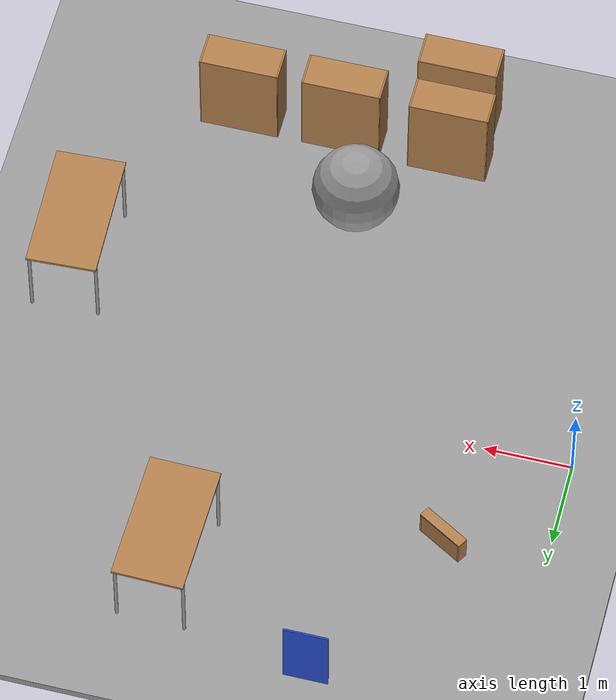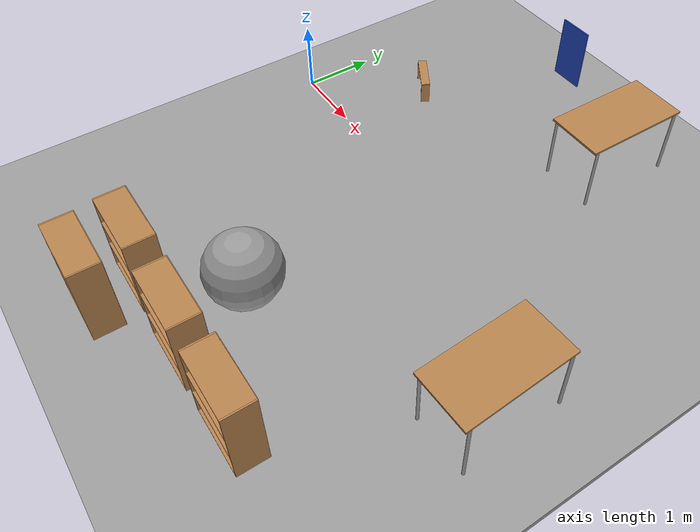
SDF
<sdf version="1.6">
 <world name="default">
  <model name="ground_plane">
   <static>1</static>
   <link name="link">
    <collision name="collision">
     <geometry><plane><normal>0 0 1</normal><size>100 100</size></plane></geometry>
     <surface><friction><ode><mu>100</mu><mu2>50</mu2></ode></friction></surface>
    </collision>
    <visual name="visual">
     <cast_shadows>0</cast_shadows>
     <geometry><plane><normal>0 0 1</normal><size>100 100</size></plane></geometry>
     <material>
      <script><uri>file://media/materials/scripts/gazebo.material</uri><name>Gazebo/Grey</name></script>
     </material>
    </visual>
   </link>
  </model>
  <model name="table">
   <static>1</static>
   <link name="link">
    <collision name="surface">
     <pose>0 0 1 0 -0 0</pose>
     <geometry><box><size>1.5 0.8 0.03</size></box></geometry>
     <surface><friction><ode><mu>0.6</mu><mu2>0.6</mu2></ode></friction></surface>
    </collision>
    <visual name="visual1">
     <pose>0 0 1 0 -0 0</pose>
     <geometry><box><size>1.5 0.8 0.03</size></box></geometry>
     <material>
      <script><uri>file://media/materials/scripts/gazebo.material</uri><name>Gazebo/Wood</name></script>
     </material>
    </visual>
    <collision name="front_left_leg">
     <pose>0.68 0.38 0.5 0 -0 0</pose>
     <geometry><cylinder><radius>0.02</radius><length>1</length></cylinder></geometry>
    </collision>
    <visual name="front_left_leg">
     <pose>0.68 0.38 0.5 0 -0 0</pose>
     <geometry><cylinder><radius>0.02</radius><length>1</length></cylinder></geometry>
     <material>
      <script><uri>file://media/materials/scripts/gazebo.material</uri><name>Gazebo/Grey</name></script>
     </material>
    </visual>
    <collision name="front_right_leg">
     <pose>0.68 -0.38 0.5 0 -0 0</pose>
     <geometry><cylinder><radius>0.02</radius><length>1</length></cylinder></geometry>
    </collision>
    <visual name="front_right_leg">
     <pose>0.68 -0.38 0.5 0 -0 0</pose>
     <geometry><cylinder><radius>0.02</radius><length>1</length></cylinder></geometry>
     <material>
      <script><uri>file://media/materials/scripts/gazebo.material</uri><name>Gazebo/Grey</name></script>
     </material>
    </visual>
    <collision name="back_right_leg">
     <pose>-0.68 -0.38 0.5 0 -0 0</pose>
     <geometry><cylinder><radius>0.02</radius><length>1</length></cylinder></geometry>
    </collision>
    <visual name="back_right_leg">
     <pose>-0.68 -0.38 0.5 0 -0 0</pose>
     <geometry><cylinder><radius>0.02</radius><length>1</length></cylinder></geometry>
     <material>
      <script><uri>file://media/materials/scripts/gazebo.material</uri><name>Gazebo/Grey</name></script>
     </material>
    </visual>
    <collision name="back_left_leg">
     <pose>-0.68 0.38 0.5 0 -0 0</pose>
     <geometry><cylinder><radius>0.02</radius><length>1</length></cylinder></geometry>
    </collision>
    <visual name="back_left_leg">
     <pose>-0.68 0.38 0.5 0 -0 0</pose>
     <geometry><cylinder><radius>0.02</radius><length>1</length></cylinder></geometry>
     <material>
      <script><uri>file://media/materials/scripts/gazebo.material</uri><name>Gazebo/Grey</name></script>
     </material>
    </visual>
   </link>
   <pose>3.97398 2.37676 0 0 -0 1.55172</pose>
  </model>
  <model name="ground_plane_0">
   <static>1</static>
   <link name="link">
    <collision name="collision">
     <geometry><plane><normal>0 0 1</normal><size>100 100</size></plane></geometry>
     <surface><friction><ode><mu>100</mu><mu2>50</mu2></ode></friction></surface>
    </collision>
    <visual name="visual">
     <cast_shadows>0</cast_shadows>
     <geometry><plane><normal>0 0 1</normal><size>100 100</size></plane></geometry>
     <material>
      <script><uri>file://media/materials/scripts/gazebo.material</uri><name>Gazebo/Grey</name></script>
     </material>
    </visual>
   </link>
   <pose>2.55488 -2.2574 0 0 -0 0</pose>
  </model>
  <model name="table_1">
   <static>1</static>
   <link name="link">
    <collision name="surface">
     <pose>0 0 1 0 -0 0</pose>
     <geometry><box><size>1.5 0.8 0.03</size></box></geometry>
     <surface><friction><ode><mu>0.6</mu><mu2>0.6</mu2></ode></friction></surface>
    </collision>
    <visual name="visual1">
     <pose>0 0 1 0 -0 0</pose>
     <geometry><box><size>1.5 0.8 0.03</size></box></geometry>
     <material>
      <script><uri>file://media/materials/scripts/gazebo.material</uri><name>Gazebo/Wood</name></script>
     </material>
    </visual>
    <collision name="front_left_leg">
     <pose>0.68 0.38 0.5 0 -0 0</pose>
     <geometry><cylinder><radius>0.02</radius><length>1</length></cylinder></geometry>
    </collision>
    <visual name="front_left_leg">
     <pose>0.68 0.38 0.5 0 -0 0</pose>
     <geometry><cylinder><radius>0.02</radius><length>1</length></cylinder></geometry>
     <material>
      <script><uri>file://media/materials/scripts/gazebo.material</uri><name>Gazebo/Grey</name></script>
     </material>
    </visual>
    <collision name="front_right_leg">
     <pose>0.68 -0.38 0.5 0 -0 0</pose>
     <geometry><cylinder><radius>0.02</radius><length>1</length></cylinder></geometry>
    </collision>
    <visual name="front_right_leg">
     <pose>0.68 -0.38 0.5 0 -0 0</pose>
     <geometry><cylinder><radius>0.02</radius><length>1</length></cylinder></geometry>
     <material>
      <script><uri>file://media/materials/scripts/gazebo.material</uri><name>Gazebo/Grey</name></script>
     </material>
    </visual>
    <collision name="back_right_leg">
     <pose>-0.68 -0.38 0.5 0 -0 0</pose>
     <geometry><cylinder><radius>0.02</radius><length>1</length></cylinder></geometry>
    </collision>
    <visual name="back_right_leg">
     <pose>-0.68 -0.38 0.5 0 -0 0</pose>
     <geometry><cylinder><radius>0.02</radius><length>1</length></cylinder></geometry>
     <material>
      <script><uri>file://media/materials/scripts/gazebo.material</uri><name>Gazebo/Grey</name></script>
     </material>
    </visual>
    <collision name="back_left_leg">
     <pose>-0.68 0.38 0.5 0 -0 0</pose>
     <geometry><cylinder><radius>0.02</radius><length>1</length></cylinder></geometry>
    </collision>
    <visual name="back_left_leg">
     <pose>-0.68 0.38 0.5 0 -0 0</pose>
     <geometry><cylinder><radius>0.02</radius><length>1</length></cylinder></geometry>
     <material>
      <script><uri>file://media/materials/scripts/gazebo.material</uri><name>Gazebo/Grey</name></script>
     </material>
    </visual>
   </link>
   <pose>6.01108 -1.30901 0 0 0 -1.52855</pose>
  </model>
  <model name="bookshelf_1">
   <static>1</static>
   <link name="link">
    <inertial><mass>1</mass></inertial>
    <collision name="back">
     <pose>0 0.005 0.6 0 -0 0</pose>
     <geometry><box><size>0.9 0.01 1.2</size></box></geometry>
    </collision>
    <visual name="visual1">
     <pose>0 0.005 0.6 0 -0 0</pose>
     <geometry><box><size>0.9 0.01 1.2</size></box></geometry>
     <material>
      <script><uri>file://media/materials/scripts/gazebo.material</uri><name>Gazebo/Wood</name></script>
     </material>
    </visual>
    <collision name="left_side">
     <pose>0.45 -0.195 0.6 0 -0 0</pose>
     <geometry><box><size>0.02 0.4 1.2</size></box></geometry>
    </collision>
    <visual name="visual2">
     <pose>0.45 -0.195 0.6 0 -0 0</pose>
     <geometry><box><size>0.02 0.4 1.2</size></box></geometry>
     <material>
      <script><uri>file://media/materials/scripts/gazebo.material</uri><name>Gazebo/Wood</name></script>
     </material>
    </visual>
    <collision name="right_side">
     <pose>-0.45 -0.195 0.6 0 -0 0</pose>
     <geometry><box><size>0.02 0.4 1.2</size></box></geometry>
    </collision>
    <visual name="visual3">
     <pose>-0.45 -0.195 0.6 0 -0 0</pose>
     <geometry><box><size>0.02 0.4 1.2</size></box></geometry>
     <material>
      <script><uri>file://media/materials/scripts/gazebo.material</uri><name>Gazebo/Wood</name></script>
     </material>
    </visual>
    <collision name="bottom">
     <pose>0 -0.195 0.03 0 -0 0</pose>
     <geometry><box><size>0.88 0.4 0.06</size></box></geometry>
    </collision>
    <visual name="visual4">
     <pose>0 -0.195 0.03 0 -0 0</pose>
     <geometry><box><size>0.88 0.4 0.06</size></box></geometry>
     <material>
      <script><uri>file://media/materials/scripts/gazebo.material</uri><name>Gazebo/Wood</name></script>
     </material>
    </visual>
    <collision name="top">
     <pose>0 -0.195 1.19 0 -0 0</pose>
     <geometry><box><size>0.88 0.4 0.02</size></box></geometry>
    </collision>
    <visual name="visual5">
     <pose>0 -0.195 1.19 0 -0 0</pose>
     <geometry><box><size>0.88 0.4 0.02</size></box></geometry>
     <material>
      <script><uri>file://media/materials/scripts/gazebo.material</uri><name>Gazebo/Wood</name></script>
     </material>
    </visual>
    <collision name="low_shelf">
     <pose>0 -0.195 0.43 0 -0 0</pose>
     <geometry><box><size>0.88 0.4 0.02</size></box></geometry>
    </collision>
    <visual name="visual6">
     <pose>0 -0.195 0.43 0 -0 0</pose>
     <geometry><box><size>0.88 0.4 0.02</size></box></geometry>
     <material>
      <script><uri>file://media/materials/scripts/gazebo.material</uri><name>Gazebo/Wood</name></script>
     </material>
    </visual>
    <collision name="high_shelf">
     <pose>0 -0.195 0.8 0 -0 0</pose>
     <geometry><box><size>0.88 0.4 0.02</size></box></geometry>
    </collision>
    <visual name="visual7">
     <pose>0 -0.195 0.8 0 -0 0</pose>
     <geometry><box><size>0.88 0.4 0.02</size></box></geometry>
     <material>
      <script><uri>file://media/materials/scripts/gazebo.material</uri><name>Gazebo/Wood</name></script>
     </material>
    </visual>
   </link>
   <pose>2.2636 -3.49117 0 0 -0 0</pose>
  </model>
  <model name="bookshelf_2">
   <static>1</static>
   <link name="link">
    <inertial><mass>1</mass></inertial>
    <collision name="back">
     <pose>0 0.005 0.6 0 -0 0</pose>
     <geometry><box><size>0.9 0.01 1.2</size></box></geometry>
    </collision>
    <visual name="visual1">
     <pose>0 0.005 0.6 0 -0 0</pose>
     <geometry><box><size>0.9 0.01 1.2</size></box></geometry>
     <material>
      <script><uri>file://media/materials/scripts/gazebo.material</uri><name>Gazebo/Wood</name></script>
     </material>
    </visual>
    <collision name="left_side">
     <pose>0.45 -0.195 0.6 0 -0 0</pose>
     <geometry><box><size>0.02 0.4 1.2</size></box></geometry>
    </collision>
    <visual name="visual2">
     <pose>0.45 -0.195 0.6 0 -0 0</pose>
     <geometry><box><size>0.02 0.4 1.2</size></box></geometry>
     <material>
      <script><uri>file://media/materials/scripts/gazebo.material</uri><name>Gazebo/Wood</name></script>
     </material>
    </visual>
    <collision name="right_side">
     <pose>-0.45 -0.195 0.6 0 -0 0</pose>
     <geometry><box><size>0.02 0.4 1.2</size></box></geometry>
    </collision>
    <visual name="visual3">
     <pose>-0.45 -0.195 0.6 0 -0 0</pose>
     <geometry><box><size>0.02 0.4 1.2</size></box></geometry>
     <material>
      <script><uri>file://media/materials/scripts/gazebo.material</uri><name>Gazebo/Wood</name></script>
     </material>
    </visual>
    <collision name="bottom">
     <pose>0 -0.195 0.03 0 -0 0</pose>
     <geometry><box><size>0.88 0.4 0.06</size></box></geometry>
    </collision>
    <visual name="visual4">
     <pose>0 -0.195 0.03 0 -0 0</pose>
     <geometry><box><size>0.88 0.4 0.06</size></box></geometry>
     <material>
      <script><uri>file://media/materials/scripts/gazebo.material</uri><name>Gazebo/Wood</name></script>
     </material>
    </visual>
    <collision name="top">
     <pose>0 -0.195 1.19 0 -0 0</pose>
     <geometry><box><size>0.88 0.4 0.02</size></box></geometry>
    </collision>
    <visual name="visual5">
     <pose>0 -0.195 1.19 0 -0 0</pose>
     <geometry><box><size>0.88 0.4 0.02</size></box></geometry>
     <material>
      <script><uri>file://media/materials/scripts/gazebo.material</uri><name>Gazebo/Wood</name></script>
     </material>
    </visual>
    <collision name="low_shelf">
     <pose>0 -0.195 0.43 0 -0 0</pose>
     <geometry><box><size>0.88 0.4 0.02</size></box></geometry>
    </collision>
    <visual name="visual6">
     <pose>0 -0.195 0.43 0 -0 0</pose>
     <geometry><box><size>0.88 0.4 0.02</size></box></geometry>
     <material>
      <script><uri>file://media/materials/scripts/gazebo.material</uri><name>Gazebo/Wood</name></script>
     </material>
    </visual>
    <collision name="high_shelf">
     <pose>0 -0.195 0.8 0 -0 0</pose>
     <geometry><box><size>0.88 0.4 0.02</size></box></geometry>
    </collision>
    <visual name="visual7">
     <pose>0 -0.195 0.8 0 -0 0</pose>
     <geometry><box><size>0.88 0.4 0.02</size></box></geometry>
     <material>
      <script><uri>file://media/materials/scripts/gazebo.material</uri><name>Gazebo/Wood</name></script>
     </material>
    </visual>
   </link>
   <pose>3.51852 -3.51648 0 0 -0 0</pose>
  </model>
  <model name="bookshelf_3">
   <static>1</static>
   <link name="link">
    <inertial><mass>1</mass></inertial>
    <collision name="back">
     <pose>0 0.005 0.6 0 -0 0</pose>
     <geometry><box><size>0.9 0.01 1.2</size></box></geometry>
    </collision>
    <visual name="visual1">
     <pose>0 0.005 0.6 0 -0 0</pose>
     <geometry><box><size>0.9 0.01 1.2</size></box></geometry>
     <material>
      <script><uri>file://media/materials/scripts/gazebo.material</uri><name>Gazebo/Wood</name></script>
     </material>
    </visual>
    <collision name="left_side">
     <pose>0.45 -0.195 0.6 0 -0 0</pose>
     <geometry><box><size>0.02 0.4 1.2</size></box></geometry>
    </collision>
    <visual name="visual2">
     <pose>0.45 -0.195 0.6 0 -0 0</pose>
     <geometry><box><size>0.02 0.4 1.2</size></box></geometry>
     <material>
      <script><uri>file://media/materials/scripts/gazebo.material</uri><name>Gazebo/Wood</name></script>
     </material>
    </visual>
    <collision name="right_side">
     <pose>-0.45 -0.195 0.6 0 -0 0</pose>
     <geometry><box><size>0.02 0.4 1.2</size></box></geometry>
    </collision>
    <visual name="visual3">
     <pose>-0.45 -0.195 0.6 0 -0 0</pose>
     <geometry><box><size>0.02 0.4 1.2</size></box></geometry>
     <material>
      <script><uri>file://media/materials/scripts/gazebo.material</uri><name>Gazebo/Wood</name></script>
     </material>
    </visual>
    <collision name="bottom">
     <pose>0 -0.195 0.03 0 -0 0</pose>
     <geometry><box><size>0.88 0.4 0.06</size></box></geometry>
    </collision>
    <visual name="visual4">
     <pose>0 -0.195 0.03 0 -0 0</pose>
     <geometry><box><size>0.88 0.4 0.06</size></box></geometry>
     <material>
      <script><uri>file://media/materials/scripts/gazebo.material</uri><name>Gazebo/Wood</name></script>
     </material>
    </visual>
    <collision name="top">
     <pose>0 -0.195 1.19 0 -0 0</pose>
     <geometry><box><size>0.88 0.4 0.02</size></box></geometry>
    </collision>
    <visual name="visual5">
     <pose>0 -0.195 1.19 0 -0 0</pose>
     <geometry><box><size>0.88 0.4 0.02</size></box></geometry>
     <material>
      <script><uri>file://media/materials/scripts/gazebo.material</uri><name>Gazebo/Wood</name></script>
     </material>
    </visual>
    <collision name="low_shelf">
     <pose>0 -0.195 0.43 0 -0 0</pose>
     <geometry><box><size>0.88 0.4 0.02</size></box></geometry>
    </collision>
    <visual name="visual6">
     <pose>0 -0.195 0.43 0 -0 0</pose>
     <geometry><box><size>0.88 0.4 0.02</size></box></geometry>
     <material>
      <script><uri>file://media/materials/scripts/gazebo.material</uri><name>Gazebo/Wood</name></script>
     </material>
    </visual>
    <collision name="high_shelf">
     <pose>0 -0.195 0.8 0 -0 0</pose>
     <geometry><box><size>0.88 0.4 0.02</size></box></geometry>
    </collision>
    <visual name="visual7">
     <pose>0 -0.195 0.8 0 -0 0</pose>
     <geometry><box><size>0.88 0.4 0.02</size></box></geometry>
     <material>
      <script><uri>file://media/materials/scripts/gazebo.material</uri><name>Gazebo/Wood</name></script>
     </material>
    </visual>
   </link>
   <pose>4.71138 -3.50936 0 0 -0 0</pose>
  </model>
  <model name="bookshelf_4">
   <static>1</static>
   <link name="link">
    <inertial><mass>1</mass></inertial>
    <collision name="back">
     <pose>0 0.005 0.6 0 -0 0</pose>
     <geometry><box><size>0.9 0.01 1.2</size></box></geometry>
    </collision>
    <visual name="visual1">
     <pose>0 0.005 0.6 0 -0 0</pose>
     <geometry><box><size>0.9 0.01 1.2</size></box></geometry>
     <material>
      <script><uri>file://media/materials/scripts/gazebo.material</uri><name>Gazebo/Wood</name></script>
     </material>
    </visual>
    <collision name="left_side">
     <pose>0.45 -0.195 0.6 0 -0 0</pose>
     <geometry><box><size>0.02 0.4 1.2</size></box></geometry>
    </collision>
    <visual name="visual2">
     <pose>0.45 -0.195 0.6 0 -0 0</pose>
     <geometry><box><size>0.02 0.4 1.2</size></box></geometry>
     <material>
      <script><uri>file://media/materials/scripts/gazebo.material</uri><name>Gazebo/Wood</name></script>
     </material>
    </visual>
    <collision name="right_side">
     <pose>-0.45 -0.195 0.6 0 -0 0</pose>
     <geometry><box><size>0.02 0.4 1.2</size></box></geometry>
    </collision>
    <visual name="visual3">
     <pose>-0.45 -0.195 0.6 0 -0 0</pose>
     <geometry><box><size>0.02 0.4 1.2</size></box></geometry>
     <material>
      <script><uri>file://media/materials/scripts/gazebo.material</uri><name>Gazebo/Wood</name></script>
     </material>
    </visual>
    <collision name="bottom">
     <pose>0 -0.195 0.03 0 -0 0</pose>
     <geometry><box><size>0.88 0.4 0.06</size></box></geometry>
    </collision>
    <visual name="visual4">
     <pose>0 -0.195 0.03 0 -0 0</pose>
     <geometry><box><size>0.88 0.4 0.06</size></box></geometry>
     <material>
      <script><uri>file://media/materials/scripts/gazebo.material</uri><name>Gazebo/Wood</name></script>
     </material>
    </visual>
    <collision name="top">
     <pose>0 -0.195 1.19 0 -0 0</pose>
     <geometry><box><size>0.88 0.4 0.02</size></box></geometry>
    </collision>
    <visual name="visual5">
     <pose>0 -0.195 1.19 0 -0 0</pose>
     <geometry><box><size>0.88 0.4 0.02</size></box></geometry>
     <material>
      <script><uri>file://media/materials/scripts/gazebo.material</uri><name>Gazebo/Wood</name></script>
     </material>
    </visual>
    <collision name="low_shelf">
     <pose>0 -0.195 0.43 0 -0 0</pose>
     <geometry><box><size>0.88 0.4 0.02</size></box></geometry>
    </collision>
    <visual name="visual6">
     <pose>0 -0.195 0.43 0 -0 0</pose>
     <geometry><box><size>0.88 0.4 0.02</size></box></geometry>
     <material>
      <script><uri>file://media/materials/scripts/gazebo.material</uri><name>Gazebo/Wood</name></script>
     </material>
    </visual>
    <collision name="high_shelf">
     <pose>0 -0.195 0.8 0 -0 0</pose>
     <geometry><box><size>0.88 0.4 0.02</size></box></geometry>
    </collision>
    <visual name="visual7">
     <pose>0 -0.195 0.8 0 -0 0</pose>
     <geometry><box><size>0.88 0.4 0.02</size></box></geometry>
     <material>
      <script><uri>file://media/materials/scripts/gazebo.material</uri><name>Gazebo/Wood</name></script>
     </material>
    </visual>
   </link>
   <pose>2.31258 -4.12819 0 0 -0 0</pose>
  </model>
  <model name="wooden_case">
   <link name="base">
    <pose>0 0 0.024 0 -0 0</pose>
    <inertial>
     <pose>-0.022184 0 0.171592 0 -0 0</pose>
     <mass>3.96264</mass>
     <inertia>
      <ixx>0.213536</ixx>
      <ixy>0</ixy>
      <ixz>0.000779377</ixz>
      <iyy>0.0708943</iyy>
      <iyz>0</iyz>
      <izz>0.154604</izz>
     </inertia>
    </inertial>
    <collision name="collision_back">
     <pose>-0.053975 0 0.1778 0 -0 0</pose>
     <geometry><box><size>0.01905 0.5461 0.3175</size></box></geometry>
     <surface>
      <contact>
       <poissons_ratio>0.347</poissons_ratio>
       <elastic_modulus>8.8e+09</elastic_modulus>
       <ode><kp>100000</kp><kd>100</kd><max_vel>100</max_vel><min_depth>0.001</min_depth></ode>
      </contact>
      <friction>
       <torsional>
        <coefficient>1</coefficient>
        <use_patch_radius>0</use_patch_radius>
        <surface_radius>0.01</surface_radius>
       </torsional>
      </friction>
     </surface>
    </collision>
    <visual name="visual_back">
     <pose>-0.053975 0 0.1778 0 -0 0</pose>
     <geometry><box><size>0.01905 0.5461 0.3175</size></box></geometry>
     <material>
      <script><uri>file://media/materials/scripts/gazebo.material</uri><name>Gazebo/Wood</name></script>
     </material>
    </visual>
    <collision name="collision_bottom">
     <pose>0 0 0.009525 0 -0 0</pose>
     <geometry><box><size>0.127 0.5842 0.01905</size></box></geometry>
     <surface>
      <contact>
       <poissons_ratio>0.347</poissons_ratio>
       <elastic_modulus>8.8e+09</elastic_modulus>
       <ode><kp>100000</kp><kd>100</kd><max_vel>100</max_vel><min_depth>0.001</min_depth></ode>
      </contact>
      <friction>
       <torsional>
        <coefficient>1</coefficient>
        <use_patch_radius>0</use_patch_radius>
        <surface_radius>0.01</surface_radius>
       </torsional>
      </friction>
     </surface>
    </collision>
    <visual name="visual_bottom">
     <pose>0 0 0.009525 0 -0 0</pose>
     <geometry><box><size>0.127 0.5842 0.01905</size></box></geometry>
     <material>
      <script><uri>file://media/materials/scripts/gazebo.material</uri><name>Gazebo/Wood</name></script>
     </material>
    </visual>
    <collision name="collision_top">
     <pose>0 0 0.346075 0 -0 0</pose>
     <geometry><box><size>0.127 0.5842 0.01905</size></box></geometry>
     <surface>
      <contact>
       <poissons_ratio>0.347</poissons_ratio>
       <elastic_modulus>8.8e+09</elastic_modulus>
       <ode><kp>100000</kp><kd>100</kd><max_vel>100</max_vel><min_depth>0.001</min_depth></ode>
      </contact>
      <friction>
       <torsional>
        <coefficient>1</coefficient>
        <use_patch_radius>0</use_patch_radius>
        <surface_radius>0.01</surface_radius>
       </torsional>
      </friction>
     </surface>
    </collision>
    <visual name="visual_top">
     <pose>0 0 0.346075 0 -0 0</pose>
     <geometry><box><size>0.127 0.5842 0.01905</size></box></geometry>
     <material>
      <script><uri>file://media/materials/scripts/gazebo.material</uri><name>Gazebo/Wood</name></script>
     </material>
    </visual>
    <collision name="collision_left">
     <pose>0 -0.282575 0.1778 0 -0 0</pose>
     <geometry><box><size>0.127 0.01905 0.3175</size></box></geometry>
     <surface>
      <contact>
       <poissons_ratio>0.347</poissons_ratio>
       <elastic_modulus>8.8e+09</elastic_modulus>
       <ode><kp>100000</kp><kd>100</kd><max_vel>100</max_vel><min_depth>0.001</min_depth></ode>
      </contact>
      <friction>
       <torsional>
        <coefficient>1</coefficient>
        <use_patch_radius>0</use_patch_radius>
        <surface_radius>0.01</surface_radius>
       </torsional>
      </friction>
     </surface>
    </collision>
    <visual name="visual_left">
     <pose>0 -0.282575 0.1778 0 -0 0</pose>
     <geometry><box><size>0.127 0.01905 0.3175</size></box></geometry>
     <material>
      <script><uri>file://media/materials/scripts/gazebo.material</uri><name>Gazebo/Wood</name></script>
     </material>
    </visual>
    <collision name="collision_right">
     <pose>0 0.282575 0.1778 0 -0 0</pose>
     <geometry><box><size>0.127 0.01905 0.3175</size></box></geometry>
     <surface>
      <contact>
       <poissons_ratio>0.347</poissons_ratio>
       <elastic_modulus>8.8e+09</elastic_modulus>
       <ode><kp>100000</kp><kd>100</kd><max_vel>100</max_vel><min_depth>0.001</min_depth></ode>
      </contact>
      <friction>
       <torsional>
        <coefficient>1</coefficient>
        <use_patch_radius>0</use_patch_radius>
        <surface_radius>0.01</surface_radius>
       </torsional>
      </friction>
     </surface>
    </collision>
    <visual name="visual_right">
     <pose>0 0.282575 0.1778 0 -0 0</pose>
     <geometry><box><size>0.127 0.01905 0.3175</size></box></geometry>
     <material>
      <script><uri>file://media/materials/scripts/gazebo.material</uri><name>Gazebo/Wood</name></script>
     </material>
    </visual>
    <collision name="collision_block_left">
     <pose>0.0095 -0.2151 -0.012 0 -0 0</pose>
     <geometry><box><size>0.108 0.05 0.024</size></box></geometry>
     <surface>
      <contact>
       <poissons_ratio>0.347</poissons_ratio>
       <elastic_modulus>8.8e+09</elastic_modulus>
       <ode><kp>100000</kp><kd>100</kd><max_vel>100</max_vel><min_depth>0.001</min_depth></ode>
      </contact>
      <friction>
       <torsional>
        <coefficient>1</coefficient>
        <use_patch_radius>0</use_patch_radius>
        <surface_radius>0.01</surface_radius>
       </torsional>
      </friction>
     </surface>
    </collision>
    <visual name="visual_block_left">
     <pose>0.0095 -0.2151 -0.012 0 -0 0</pose>
     <geometry><box><size>0.108 0.05 0.024</size></box></geometry>
     <material>
      <script><uri>file://media/materials/scripts/gazebo.material</uri><name>Gazebo/Wood</name></script>
     </material>
    </visual>
    <collision name="collision_block_right">
     <pose>0.0095 0.2151 -0.012 0 -0 0</pose>
     <geometry><box><size>0.108 0.05 0.024</size></box></geometry>
     <surface>
      <contact>
       <poissons_ratio>0.347</poissons_ratio>
       <elastic_modulus>8.8e+09</elastic_modulus>
       <ode><kp>100000</kp><kd>100</kd><max_vel>100</max_vel><min_depth>0.001</min_depth></ode>
      </contact>
      <friction>
       <torsional>
        <coefficient>1</coefficient>
        <use_patch_radius>0</use_patch_radius>
        <surface_radius>0.01</surface_radius>
       </torsional>
      </friction>
     </surface>
    </collision>
    <visual name="visual_block_right">
     <pose>0.0095 0.2151 -0.012 0 -0 0</pose>
     <geometry><box><size>0.108 0.05 0.024</size></box></geometry>
     <material>
      <script><uri>file://media/materials/scripts/gazebo.material</uri><name>Gazebo/Wood</name></script>
     </material>
    </visual>
   </link>
   <link name="lid">
    <pose>0.243775 0 0.009525 0 -0 0</pose>
    <inertial>
     <mass>1.97874</mass>
     <inertia>
      <ixx>0.0563367</ixx>
      <ixy>0</ixy>
      <ixz>0</ixz>
      <iyy>0.020911</iyy>
      <iyz>0</iyz>
      <izz>0.0771281</izz>
     </inertia>
    </inertial>
    <collision name="collision">
     <geometry><box><size>0.3556 0.5842 0.01905</size></box></geometry>
     <surface>
      <contact>
       <poissons_ratio>0.347</poissons_ratio>
       <elastic_modulus>8.8e+09</elastic_modulus>
       <ode><kp>100000</kp><kd>100</kd><max_vel>100</max_vel><min_depth>0.001</min_depth></ode>
      </contact>
      <friction>
       <torsional>
        <coefficient>1</coefficient>
        <use_patch_radius>0</use_patch_radius>
        <surface_radius>0.01</surface_radius>
       </torsional>
      </friction>
     </surface>
    </collision>
    <visual name="visual">
     <geometry><box><size>0.3556 0.5842 0.01905</size></box></geometry>
     <material>
      <script><uri>file://media/materials/scripts/gazebo.material</uri><name>Gazebo/Wood</name></script>
     </material>
    </visual>
    <visual name="tee_nut_1">
     <pose>0.122 -0.216 0 0 -0 0</pose>
     <geometry><cylinder><radius>0.00635</radius><length>0.0192405</length></cylinder></geometry>
     <material>
      <script><uri>file://media/materials/scripts/gazebo.material</uri><name>Gazebo/Grey</name></script>
     </material>
    </visual>
    <visual name="tee_nut_2">
     <pose>0.122 -0.088 0 0 -0 0</pose>
     <geometry><cylinder><radius>0.00635</radius><length>0.0192405</length></cylinder></geometry>
     <material>
      <script><uri>file://media/materials/scripts/gazebo.material</uri><name>Gazebo/Grey</name></script>
     </material>
    </visual>
    <visual name="tee_nut_3">
     <pose>0.122 0.088 0 0 -0 0</pose>
     <geometry><cylinder><radius>0.00635</radius><length>0.0192405</length></cylinder></geometry>
     <material>
      <script><uri>file://media/materials/scripts/gazebo.material</uri><name>Gazebo/Grey</name></script>
     </material>
    </visual>
    <visual name="tee_nut_4">
     <pose>0.122 0.216 0 0 -0 0</pose>
     <geometry><cylinder><radius>0.00635</radius><length>0.0192405</length></cylinder></geometry>
     <material>
      <script><uri>file://media/materials/scripts/gazebo.material</uri><name>Gazebo/Grey</name></script>
     </material>
    </visual>
   </link>
   <joint name="lid_hinge" type="revolute">
    <pose>-0.1778 0 0.01905 0 -0 0</pose>
    <parent>base</parent>
    <child>lid</child>
    <axis>
     <xyz>0 1 0</xyz>
     <limit><upper>0.523599</upper><lower>-1.5708</lower></limit>
     <use_parent_model_frame>0</use_parent_model_frame>
     <dynamics><spring_reference>0</spring_reference><spring_stiffness>0</spring_stiffness></dynamics>
    </axis>
   </joint>
   <pose>1.15096 1.31953 0 0 0 -2.10603</pose>
  </model>
  <model name="unit_sphere">
   <pose>3.14088 -2.72944 0.5 0 -0 0</pose>
   <link name="link">
    <inertial>
     <mass>1</mass>
     <inertia><ixx>0.1</ixx><ixy>0</ixy><ixz>0</ixz><iyy>0.1</iyy><iyz>0</iyz><izz>0.1</izz></inertia>
    </inertial>
    <collision name="collision"><geometry><sphere><radius>0.5</radius></sphere></geometry></collision>
    <visual name="visual">
     <geometry><sphere><radius>0.5</radius></sphere></geometry>
     <material>
      <script><name>Gazebo/Grey</name><uri>file://media/materials/scripts/gazebo.material</uri></script>
     </material>
    </visual>
   </link>
  </model>
  <model name="picture">
   <link name="link">
    <pose>0.161006 0.582358 0 0 -0 0</pose>
    <inertial>
     <mass>1</mass>
     <inertia>
      <ixx>0.166667</ixx>
      <ixy>0</ixy>
      <ixz>0</ixz>
      <iyy>0.166667</iyy>
      <iyz>0</iyz>
      <izz>0.166667</izz>
     </inertia>
    </inertial>
    <visual name="visual">
     <geometry><box><size>0.5 0.02 1</size></box></geometry>
     <material>
      <script><name>Gazebo/Blue</name><uri>file://media/materials/scripts/gazebo.material</uri></script>
      <shader type="pixel"><normal_map>__default__</normal_map></shader>
      <ambient>0.3 0.3 0.3 1</ambient>
      <diffuse>0.7 0.7 0.7 1</diffuse>
      <specular>0.01 0.01 0.01 1</specular>
      <emissive>0 0 0 1</emissive>
     </material>
    </visual>
    <collision name="collision">
     <geometry><box><size>0.5 0.02 1</size></box></geometry>
     <surface>
      <friction>
       <ode><mu>1</mu><mu2>1</mu2><fdir1>0 0 0</fdir1><slip1>0</slip1><slip2>0</slip2></ode>
       <torsional>
        <coefficient>1</coefficient>
        <patch_radius>0</patch_radius>
        <surface_radius>0</surface_radius>
        <use_patch_radius>1</use_patch_radius>
        <ode><slip>0</slip></ode>
       </torsional>
      </friction>
      <bounce><restitution_coefficient>0</restitution_coefficient><threshold>1e+06</threshold></bounce>
      <contact>
       <collide_without_contact>0</collide_without_contact>
       <collide_without_contact_bitmask>1</collide_without_contact_bitmask>
       <collide_bitmask>1</collide_bitmask>
       <ode>
        <soft_cfm>0</soft_cfm>
        <soft_erp>0.2</soft_erp>
        <kp>1e+13</kp>
        <kd>1</kd>
        <max_vel>0.01</max_vel>
        <min_depth>0</min_depth>
       </ode>
       <bullet>
        <split_impulse>1</split_impulse>
        <split_impulse_penetration_threshold>-0.01</split_impulse_penetration_threshold>
        <soft_cfm>0</soft_cfm>
        <soft_erp>0.2</soft_erp>
        <kp>1e+13</kp>
        <kd>1</kd>
       </bullet>
      </contact>
     </surface>
    </collision>
   </link>
   <static>0</static>
   <pose>2.02184 2.76124 0.5 0 -0 0</pose>
  </model>
 </world>
</sdf>
